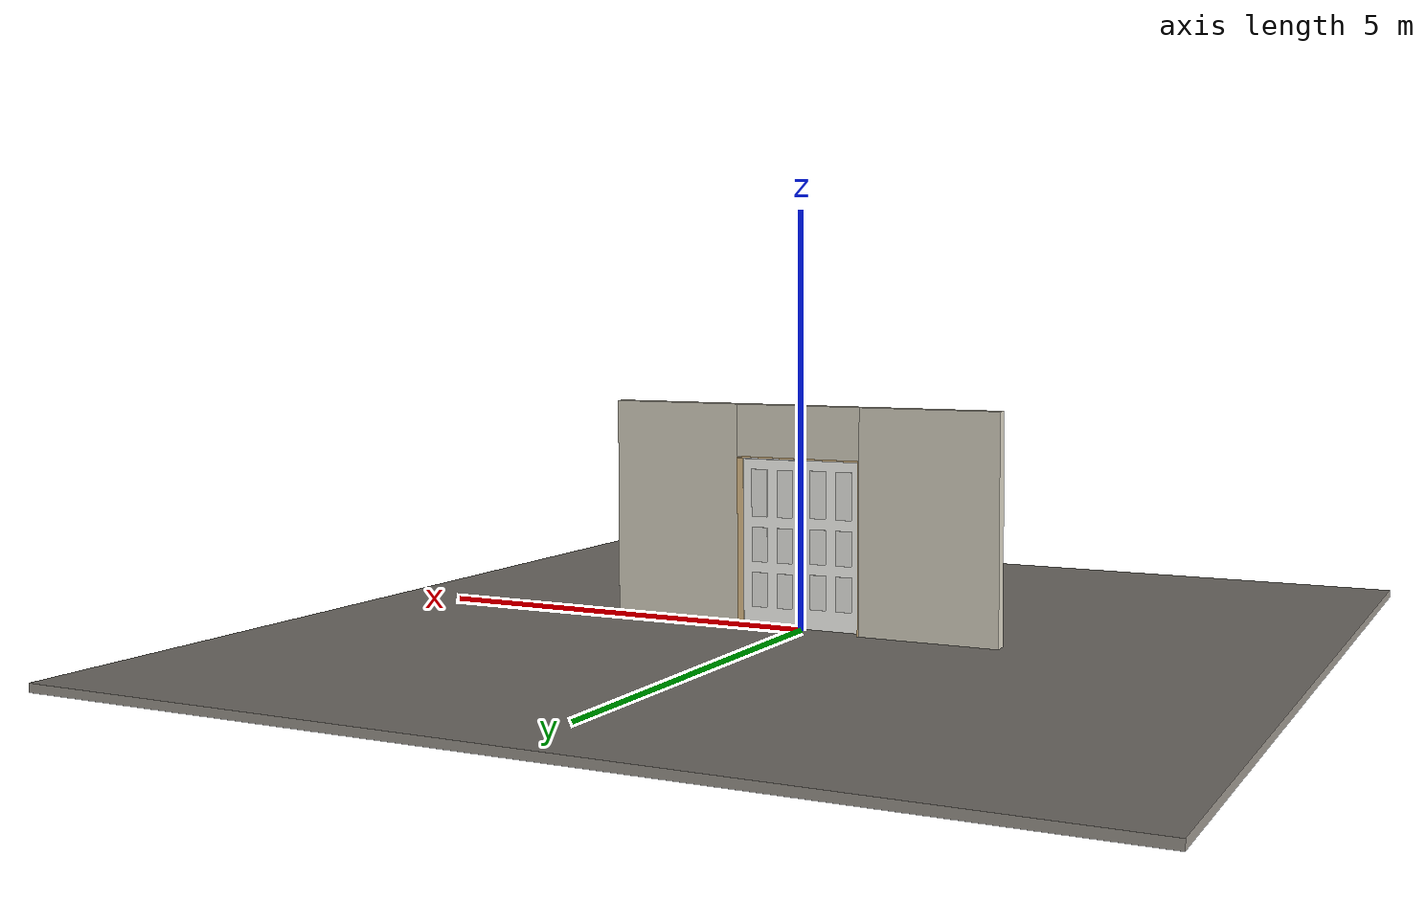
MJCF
<?xml version="1.0" ?>
<mujoco model="db0720_sliding_bypass_simple">
  <compiler angle="radian" meshdir="../../hardware" texturedir="../../textures" autolimits="true" inertiafromgeom="false"/>
  <option timestep="0.002" integrator="implicitfast" cone="elliptic" impratio="10" noslip_iterations="3">
    <flag multiccd="enable"/>
  </option>
  <size memory="16M"/>
  <default>
    <geom condim="4" solref="0.005 1" solimp="0.95 0.99 0.001"/>
    <joint solreflimit="0.005 1" solimplimit="0.95 0.99 0.001"/>
    <tendon solreflimit="0.005 1"/>
    <equality solref="0.002 1"/>
  </default>
  <visual>
    <headlight ambient="0.4 0.4 0.4" diffuse="0.7 0.7 0.7" specular="0.2 0.2 0.2"/>
    <quality shadowsize="4096"/>
    <map znear="0.01" zfar="60"/>
  </visual>
  <asset>
    <material name="mat_floor" rgba="0.55 0.53 0.5 1" specular="0.2" shininess="0.15" reflectance="0"/>
    <material name="mat_wall" rgba="0.78 0.76 0.7 1" specular="0.2" shininess="0.1" reflectance="0"/>
    <material name="mat_frame" rgba="0.82 0.7 0.5 1" specular="0.2" shininess="0.45" reflectance="0"/>
    <material name="mat_track" rgba="0.8 0.81 0.83 1" specular="0.8" shininess="0.6" reflectance="0.4"/>
    <material name="mat_leaf_0" rgba="0.93 0.93 0.91 1" specular="0.2" shininess="0.42" reflectance="0"/>
    <material name="mat_leaf_0_panel" rgba="0.856 0.856 0.837 1" specular="0.2" shininess="0.42" reflectance="0"/>
    <material name="mat_roller" rgba="0.65 0.66 0.68 1" specular="0.74" shininess="0.5" reflectance="0.36"/>
    <material name="mat_leaf_1" rgba="0.93 0.93 0.91 1" specular="0.2" shininess="0.42" reflectance="0"/>
    <material name="mat_leaf_1_panel" rgba="0.856 0.856 0.837 1" specular="0.2" shininess="0.42" reflectance="0"/>
    <material name="mat_hook" rgba="0.75 0.76 0.77 1" specular="0.8" shininess="0.65" reflectance="0.4"/>
    <texture name="skybox" type="skybox" builtin="gradient" rgb1="0.6 0.7 0.85" rgb2="0.9 0.92 0.95" width="256" height="256"/>
  </asset>
  <worldbody>
    <light name="sun" pos="1.5 -2.5 4" dir="-0.3 0.5 -0.8" directional="true" diffuse="0.8 0.8 0.8" specular="0.3 0.3 0.3" castshadow="true"/>
    <light name="fill" pos="-1.5 2.5 3" dir="0.3 -0.5 -0.7" directional="true" diffuse="0.35 0.35 0.4" castshadow="false"/>
    <camera name="robot_view" pos="0 -2.54875 1.73965" xyaxes="1 0 0 0 0.26963 0.962964" fovy="52"/>
    <camera name="far_view" pos="0 2.54875 1.73965" xyaxes="-1 0 0 0 -0.26963 0.962964" fovy="52"/>
    <camera name="iso" pos="1.93705 -2.14095 2.14745" xyaxes="0.741536 0.670913 0 -0.242917 0.268487 0.932151" fovy="46"/>
    <camera name="detail_handle" pos="0.48 -0.8 1.28" xyaxes="0.97561 0.219512 0 -0.070934 0.315262 0.94635" fovy="38"/>
    <geom name="floor" type="box" size="6 6 0.05" pos="0 0 -0.05" material="mat_floor" group="0" contype="1" conaffinity="1" friction="0.8 0.005 0.0001" density="2400"/>
    <geom name="wall_left" type="box" size="0.8645 0.0725 1.35" pos="-1.6355 0 1.35" material="mat_wall" group="0" contype="1" conaffinity="1" friction="0.6 0.005 0.0001" density="800"/>
    <geom name="wall_right" type="box" size="0.8345 0.0725 1.35" pos="1.6655 0 1.35" material="mat_wall" group="0" contype="1" conaffinity="1" friction="0.6 0.005 0.0001" density="800"/>
    <geom name="wall_header" type="box" size="0.801 0.0725 0.3145" pos="0.03 0 2.3855" material="mat_wall" group="0" contype="1" conaffinity="1" friction="0.6 0.005 0.0001" density="800"/>
    <geom name="jamb_l" type="box" size="0.0095 0.0725 1.026" pos="-0.7615 0 1.026" material="mat_frame" group="0" contype="1" conaffinity="1" friction="0.6 0.005 0.0001" density="300"/>
    <geom name="jamb_head" type="box" size="0.771 0.0725 0.0095" pos="0 0 2.0615" material="mat_frame" group="0" contype="1" conaffinity="1" friction="0.6 0.005 0.0001" density="300"/>
    <geom name="leaf_0_track_header" type="box" size="0.797 0.025 0.04" pos="-0.002 -0.0425 2.111" material="mat_track" group="0" contype="1" conaffinity="1" friction="0.6 0.005 0.0001" density="2700"/>
    <geom name="leaf_1_track_header" type="box" size="0.797 0.025 0.04" pos="0.002 0.0425 2.111" material="mat_track" group="0" contype="1" conaffinity="1" friction="0.6 0.005 0.0001" density="2700"/>
    <geom name="jamb_latch_0" type="box" size="0.0395 0.0725 1.026" pos="0.7915 0 1.026" material="mat_frame" group="0" contype="1" conaffinity="1" friction="0.6 0.005 0.0001" density="300"/>
    <site name="approach_point" pos="0 -1.5 0" quat="1 0 0 0" size="0.05" rgba="0.2 0.9 0.2 0.5" group="4"/>
    <site name="goal_point" pos="0 1.5 0" quat="1 0 0 0" size="0.05" rgba="0.2 0.9 0.2 0.5" group="4"/>
    <site name="door_plane_center" pos="0 0 1.026" quat="1 0 0 0" size="0.02" rgba="0.2 0.9 0.2 0.5" group="4"/>
    <body name="leaf_0" pos="-0.368 -0.0425 0">
      <inertial pos="0 0 1.028013" mass="40.67008" quat="-0.5 0.5 0.5 0.5" diaginertia="1.971941433 13.99757855 15.961212039"/>
      <joint name="leaf_0_slide" type="slide" axis="1 0 0" limited="true" range="0 0.716" damping="4.034754" frictionloss="11.972472" armature="0.5"/>
      <geom name="leaf_0_slab" type="box" size="0.381 0.0175 1.016" pos="0 0 1.028" material="mat_leaf_0" group="0" contype="1" conaffinity="1" friction="0.4 0.005 0.0001" density="1"/>
      <geom name="leaf_0_panel_0_n" type="box" size="0.103 0.003 0.209032" pos="-0.168 -0.0205 0.464552" material="mat_leaf_0_panel" group="1" contype="0" conaffinity="0" density="1"/>
      <geom name="leaf_0_panel_0_p" type="box" size="0.103 0.003 0.209032" pos="-0.168 0.0205 0.464552" material="mat_leaf_0_panel" group="1" contype="0" conaffinity="0" density="1"/>
      <geom name="leaf_0_panel_1_n" type="box" size="0.103 0.003 0.209032" pos="0.168 -0.0205 0.464552" material="mat_leaf_0_panel" group="1" contype="0" conaffinity="0" density="1"/>
      <geom name="leaf_0_panel_1_p" type="box" size="0.103 0.003 0.209032" pos="0.168 0.0205 0.464552" material="mat_leaf_0_panel" group="1" contype="0" conaffinity="0" density="1"/>
      <geom name="leaf_0_panel_2_n" type="box" size="0.103 0.003 0.209032" pos="-0.168 -0.0205 1.012616" material="mat_leaf_0_panel" group="1" contype="0" conaffinity="0" density="1"/>
      <geom name="leaf_0_panel_2_p" type="box" size="0.103 0.003 0.209032" pos="-0.168 0.0205 1.012616" material="mat_leaf_0_panel" group="1" contype="0" conaffinity="0" density="1"/>
      <geom name="leaf_0_panel_3_n" type="box" size="0.103 0.003 0.209032" pos="0.168 -0.0205 1.012616" material="mat_leaf_0_panel" group="1" contype="0" conaffinity="0" density="1"/>
      <geom name="leaf_0_panel_3_p" type="box" size="0.103 0.003 0.209032" pos="0.168 0.0205 1.012616" material="mat_leaf_0_panel" group="1" contype="0" conaffinity="0" density="1"/>
      <geom name="leaf_0_panel_4_n" type="box" size="0.103 0.003 0.285376" pos="-0.168 -0.0205 1.637024" material="mat_leaf_0_panel" group="1" contype="0" conaffinity="0" density="1"/>
      <geom name="leaf_0_panel_4_p" type="box" size="0.103 0.003 0.285376" pos="-0.168 0.0205 1.637024" material="mat_leaf_0_panel" group="1" contype="0" conaffinity="0" density="1"/>
      <geom name="leaf_0_panel_5_n" type="box" size="0.103 0.003 0.285376" pos="0.168 -0.0205 1.637024" material="mat_leaf_0_panel" group="1" contype="0" conaffinity="0" density="1"/>
      <geom name="leaf_0_panel_5_p" type="box" size="0.103 0.003 0.285376" pos="0.168 0.0205 1.637024" material="mat_leaf_0_panel" group="1" contype="0" conaffinity="0" density="1"/>
      <site name="leaf_0_edge_mid" pos="-0.381 0 1.028" quat="1 0 0 0" size="0.02" rgba="0.2 0.9 0.2 0.5" group="4"/>
    </body>
    <body name="leaf_1" pos="0.368 0.0425 0">
      <inertial pos="0 0 1.028013" mass="40.67008" quat="-0.5 0.5 0.5 0.5" diaginertia="1.971941433 13.99757855 15.961212039"/>
      <joint name="leaf_1_slide" type="slide" axis="-1 0 0" limited="true" range="0 0.716" damping="4.034754" frictionloss="11.972472" armature="0.5"/>
      <geom name="leaf_1_slab" type="box" size="0.381 0.0175 1.016" pos="0 0 1.028" material="mat_leaf_1" group="0" contype="1" conaffinity="1" friction="0.4 0.005 0.0001" density="1"/>
      <geom name="leaf_1_panel_0_n" type="box" size="0.103 0.003 0.209032" pos="-0.168 -0.0205 0.464552" material="mat_leaf_1_panel" group="1" contype="0" conaffinity="0" density="1"/>
      <geom name="leaf_1_panel_0_p" type="box" size="0.103 0.003 0.209032" pos="-0.168 0.0205 0.464552" material="mat_leaf_1_panel" group="1" contype="0" conaffinity="0" density="1"/>
      <geom name="leaf_1_panel_1_n" type="box" size="0.103 0.003 0.209032" pos="0.168 -0.0205 0.464552" material="mat_leaf_1_panel" group="1" contype="0" conaffinity="0" density="1"/>
      <geom name="leaf_1_panel_1_p" type="box" size="0.103 0.003 0.209032" pos="0.168 0.0205 0.464552" material="mat_leaf_1_panel" group="1" contype="0" conaffinity="0" density="1"/>
      <geom name="leaf_1_panel_2_n" type="box" size="0.103 0.003 0.209032" pos="-0.168 -0.0205 1.012616" material="mat_leaf_1_panel" group="1" contype="0" conaffinity="0" density="1"/>
      <geom name="leaf_1_panel_2_p" type="box" size="0.103 0.003 0.209032" pos="-0.168 0.0205 1.012616" material="mat_leaf_1_panel" group="1" contype="0" conaffinity="0" density="1"/>
      <geom name="leaf_1_panel_3_n" type="box" size="0.103 0.003 0.209032" pos="0.168 -0.0205 1.012616" material="mat_leaf_1_panel" group="1" contype="0" conaffinity="0" density="1"/>
      <geom name="leaf_1_panel_3_p" type="box" size="0.103 0.003 0.209032" pos="0.168 0.0205 1.012616" material="mat_leaf_1_panel" group="1" contype="0" conaffinity="0" density="1"/>
      <geom name="leaf_1_panel_4_n" type="box" size="0.103 0.003 0.285376" pos="-0.168 -0.0205 1.637024" material="mat_leaf_1_panel" group="1" contype="0" conaffinity="0" density="1"/>
      <geom name="leaf_1_panel_4_p" type="box" size="0.103 0.003 0.285376" pos="-0.168 0.0205 1.637024" material="mat_leaf_1_panel" group="1" contype="0" conaffinity="0" density="1"/>
      <geom name="leaf_1_panel_5_n" type="box" size="0.103 0.003 0.285376" pos="0.168 -0.0205 1.637024" material="mat_leaf_1_panel" group="1" contype="0" conaffinity="0" density="1"/>
      <geom name="leaf_1_panel_5_p" type="box" size="0.103 0.003 0.285376" pos="0.168 0.0205 1.637024" material="mat_leaf_1_panel" group="1" contype="0" conaffinity="0" density="1"/>
      <site name="leaf_1_edge_mid" pos="0.381 0 1.028" quat="1 0 0 0" size="0.02" rgba="0.2 0.9 0.2 0.5" group="4"/>
    </body>
  </worldbody>
  <sensor>
    <jointpos name="leaf_0_slide_pos" joint="leaf_0_slide"/>
    <jointvel name="leaf_0_slide_vel" joint="leaf_0_slide"/>
    <jointpos name="leaf_1_slide_pos" joint="leaf_1_slide"/>
    <jointvel name="leaf_1_slide_vel" joint="leaf_1_slide"/>
  </sensor>
</mujoco>
